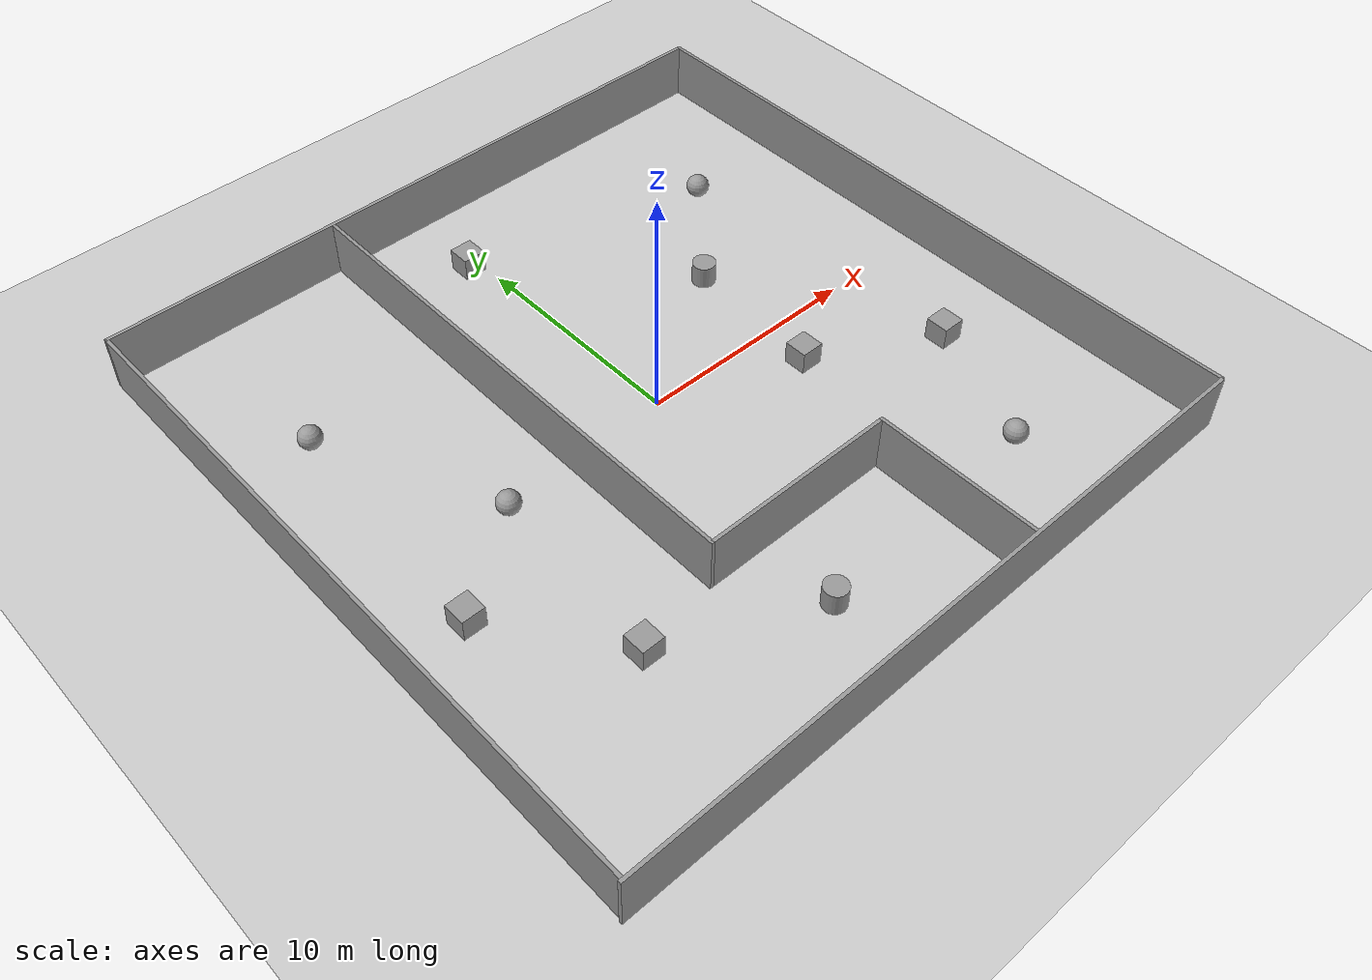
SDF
<sdf version="1.6">
 <world name="default">
  <light name="sun" type="directional">
   <pose>0 0 10 0 -0 0</pose>
   <diffuse>0.8 0.8 0.8 1</diffuse>
   <specular>0.2 0.2 0.2 1</specular>
   <attenuation>
    <range>1000</range>
    <constant>0.9</constant>
    <linear>0.01</linear>
    <quadratic>0.001</quadratic>
   </attenuation>
   <direction>-0.5 0.1 -0.9</direction>
  </light>
  <model name="ground_plane">
   <static>1</static>
   <link name="link">
    <collision name="collision">
     <geometry><plane><normal>0 0 1</normal><size>100 100</size></plane></geometry>
     <surface>
      <contact><collide_bitmask>65535</collide_bitmask></contact>
      <friction><ode><mu>100</mu><mu2>50</mu2></ode></friction>
     </surface>
    </collision>
    <visual name="visual">
     <cast_shadows>0</cast_shadows>
     <geometry><plane><normal>0 0 1</normal><size>100 100</size></plane></geometry>
     <material>
      <script><uri>file://media/materials/scripts/gazebo.material</uri><name>Gazebo/Grey</name></script>
     </material>
    </visual>
   </link>
  </model>
  <gravity>0 0 -9.8</gravity>
  <magnetic_field>6e-06 2.3e-05 -4.2e-05</magnetic_field>
  <atmosphere type="adiabatic"/>
  <physics name="default_physics" default="0" type="ode">
   <max_step_size>0.001</max_step_size>
   <real_time_factor>1</real_time_factor>
   <real_time_update_rate>1000</real_time_update_rate>
  </physics>
  <scene><ambient>0.4 0.4 0.4 1</ambient><background>0.7 0.7 0.7 1</background><shadows>1</shadows></scene>
  <spherical_coordinates>
   <surface_model>EARTH_WGS84</surface_model>
   <latitude_deg>0</latitude_deg>
   <longitude_deg>0</longitude_deg>
   <elevation>0</elevation>
   <heading_deg>0</heading_deg>
  </spherical_coordinates>
  <model name="multi_test.world">
   <pose>-0.035378 -0.035378 0 0 -0 0</pose>
   <link name="Wall_15">
    <collision name="Wall_15_Collision">
     <geometry><box><size>30.15 0.15 2.5</size></box></geometry>
     <pose>0 0 1.25 0 -0 0</pose>
    </collision>
    <visual name="Wall_15_Visual">
     <pose>0 0 1.25 0 -0 0</pose>
     <geometry><box><size>30.15 0.15 2.5</size></box></geometry>
     <material>
      <script><uri>file://media/materials/scripts/gazebo.material</uri><name>Gazebo/Grey</name></script>
      <ambient>1 1 1 1</ambient>
     </material>
     <meta><layer>0</layer></meta>
    </visual>
    <pose>-14.9646 0.035378 0 0 -0 -1.5708</pose>
   </link>
   <link name="Wall_17">
    <collision name="Wall_17_Collision">
     <geometry><box><size>30.15 0.15 2.5</size></box></geometry>
     <pose>0 0 1.25 0 -0 0</pose>
    </collision>
    <visual name="Wall_17_Visual">
     <pose>0 0 1.25 0 -0 0</pose>
     <geometry><box><size>30.15 0.15 2.5</size></box></geometry>
     <material>
      <script><uri>file://media/materials/scripts/gazebo.material</uri><name>Gazebo/Grey</name></script>
      <ambient>1 1 1 1</ambient>
     </material>
     <meta><layer>0</layer></meta>
    </visual>
    <pose>15.0354 0.035378 0 0 -0 -1.5708</pose>
   </link>
   <link name="Wall_19">
    <collision name="Wall_19_Collision">
     <geometry><box><size>30.15 0.15 2.5</size></box></geometry>
     <pose>0 0 1.25 0 -0 0</pose>
    </collision>
    <visual name="Wall_19_Visual">
     <pose>0 0 1.25 0 -0 0</pose>
     <geometry><box><size>30.15 0.15 2.5</size></box></geometry>
     <material>
      <script><uri>file://media/materials/scripts/gazebo.material</uri><name>Gazebo/Grey</name></script>
      <ambient>1 1 1 1</ambient>
     </material>
     <meta><layer>0</layer></meta>
    </visual>
    <pose>-0.03538 -15.0354 0 0 -0 0</pose>
   </link>
   <link name="Wall_21">
    <collision name="Wall_21_Collision">
     <geometry><box><size>30.15 0.15 2.5</size></box></geometry>
     <pose>0 0 1.25 0 -0 0</pose>
    </collision>
    <visual name="Wall_21_Visual">
     <pose>0 0 1.25 0 -0 0</pose>
     <geometry><box><size>30.15 0.15 2.5</size></box></geometry>
     <material>
      <script><uri>file://media/materials/scripts/gazebo.material</uri><name>Gazebo/Grey</name></script>
      <ambient>1 1 1 1</ambient>
     </material>
     <meta><layer>0</layer></meta>
    </visual>
    <pose>0.035378 15.0354 0 0 -0 0</pose>
   </link>
   <link name="Wall_23">
    <collision name="Wall_23_Collision">
     <geometry><box><size>23 0.15 2.5</size></box></geometry>
     <pose>0 0 1.25 0 -0 0</pose>
    </collision>
    <visual name="Wall_23_Visual">
     <pose>0 0 1.25 0 -0 0</pose>
     <geometry><box><size>23 0.15 2.5</size></box></geometry>
     <material>
      <script><uri>file://media/materials/scripts/gazebo.material</uri><name>Gazebo/Grey</name></script>
      <ambient>1 1 1 1</ambient>
     </material>
     <meta><layer>0</layer></meta>
    </visual>
    <pose>-4.58957 3.59241 0 0 -0 -1.5708</pose>
   </link>
   <link name="Wall_25">
    <collision name="Wall_25_Collision">
     <geometry><box><size>8.75 0.15 2.5</size></box></geometry>
     <pose>0 0 1.25 0 -0 0</pose>
    </collision>
    <visual name="Wall_25_Visual">
     <pose>0 0 1.25 0 -0 0</pose>
     <geometry><box><size>8.75 0.15 2.5</size></box></geometry>
     <material>
      <script><uri>file://media/materials/scripts/gazebo.material</uri><name>Gazebo/Grey</name></script>
      <ambient>1 1 1 1</ambient>
     </material>
     <meta><layer>0</layer></meta>
    </visual>
    <pose>-0.289572 -7.83259 0 0 -0 0</pose>
   </link>
   <link name="Wall_26">
    <collision name="Wall_26_Collision">
     <geometry><box><size>7.25 0.15 2.5</size></box></geometry>
     <pose>0 0 1.25 0 -0 0</pose>
    </collision>
    <visual name="Wall_26_Visual">
     <pose>0 0 1.25 0 -0 0</pose>
     <geometry><box><size>7.25 0.15 2.5</size></box></geometry>
     <material>
      <script><uri>file://media/materials/scripts/gazebo.material</uri><name>Gazebo/Grey</name></script>
      <ambient>1 1 1 1</ambient>
     </material>
     <meta><layer>0</layer></meta>
    </visual>
    <pose>4.01043 -11.3826 0 0 -0 -1.5708</pose>
   </link>
   <static>1</static>
  </model>
  <model name="unit_sphere">
   <pose>-11.2524 7.18842 0.5 0 -0 0</pose>
   <link name="link">
    <inertial>
     <mass>1</mass>
     <inertia><ixx>0.1</ixx><ixy>0</ixy><ixz>0</ixz><iyy>0.1</iyy><iyz>0</iyz><izz>0.1</izz></inertia>
    </inertial>
    <collision name="collision"><geometry><sphere><radius>0.5</radius></sphere></geometry></collision>
    <visual name="visual">
     <geometry><sphere><radius>0.5</radius></sphere></geometry>
     <material>
      <script><name>Gazebo/Grey</name><uri>file://media/materials/scripts/gazebo.material</uri></script>
     </material>
    </visual>
   </link>
  </model>
  <model name="unit_sphere_0">
   <pose>-7.6898 -0.409196 0.5 0 -0 0</pose>
   <link name="link">
    <inertial>
     <mass>1</mass>
     <inertia><ixx>0.1</ixx><ixy>0</ixy><ixz>0</ixz><iyy>0.1</iyy><iyz>0</iyz><izz>0.1</izz></inertia>
    </inertial>
    <collision name="collision"><geometry><sphere><radius>0.5</radius></sphere></geometry></collision>
    <visual name="visual">
     <geometry><sphere><radius>0.5</radius></sphere></geometry>
     <material>
      <script><name>Gazebo/Grey</name><uri>file://media/materials/scripts/gazebo.material</uri></script>
     </material>
    </visual>
   </link>
  </model>
  <model name="unit_box">
   <pose>-11.918 -3.4058 0.499995 0 1e-05 0</pose>
   <link name="link">
    <inertial>
     <mass>1</mass>
     <inertia>
      <ixx>0.166667</ixx>
      <ixy>0</ixy>
      <ixz>0</ixz>
      <iyy>0.166667</iyy>
      <iyz>0</iyz>
      <izz>0.166667</izz>
     </inertia>
    </inertial>
    <collision name="collision"><geometry><box><size>1 1 1</size></box></geometry></collision>
    <visual name="visual">
     <geometry><box><size>1 1 1</size></box></geometry>
     <material>
      <script><name>Gazebo/Grey</name><uri>file://media/materials/scripts/gazebo.material</uri></script>
     </material>
    </visual>
   </link>
  </model>
  <model name="unit_box_0">
   <pose>-8.22623 -8.4084 0.499995 -1e-05 -0 -0</pose>
   <link name="link">
    <inertial>
     <mass>1</mass>
     <inertia>
      <ixx>0.166667</ixx>
      <ixy>0</ixy>
      <ixz>0</ixz>
      <iyy>0.166667</iyy>
      <iyz>0</iyz>
      <izz>0.166667</izz>
     </inertia>
    </inertial>
    <collision name="collision"><geometry><box><size>1 1 1</size></box></geometry></collision>
    <visual name="visual">
     <geometry><box><size>1 1 1</size></box></geometry>
     <material>
      <script><name>Gazebo/Grey</name><uri>file://media/materials/scripts/gazebo.material</uri></script>
     </material>
    </visual>
   </link>
  </model>
  <model name="unit_cylinder">
   <pose>-1.93298 -11.2806 0.499992 -3e-06 4e-06 0</pose>
   <link name="link">
    <inertial>
     <mass>1</mass>
     <inertia><ixx>0.145833</ixx><ixy>0</ixy><ixz>0</ixz><iyy>0.145833</iyy><iyz>0</iyz><izz>0.125</izz></inertia>
    </inertial>
    <collision name="collision">
     <geometry><cylinder><radius>0.5</radius><length>1</length></cylinder></geometry>
    </collision>
    <visual name="visual">
     <geometry><cylinder><radius>0.5</radius><length>1</length></cylinder></geometry>
     <material>
      <script><name>Gazebo/Grey</name><uri>file://media/materials/scripts/gazebo.material</uri></script>
     </material>
    </visual>
   </link>
  </model>
  <model name="unit_cylinder_0">
   <pose>6.38127 4.10556 0.499998 3e-06 -4e-06 0</pose>
   <link name="link">
    <inertial>
     <mass>1</mass>
     <inertia><ixx>0.145833</ixx><ixy>0</ixy><ixz>0</ixz><iyy>0.145833</iyy><iyz>0</iyz><izz>0.125</izz></inertia>
    </inertial>
    <collision name="collision">
     <geometry><cylinder><radius>0.5</radius><length>1</length></cylinder></geometry>
    </collision>
    <visual name="visual">
     <geometry><cylinder><radius>0.5</radius><length>1</length></cylinder></geometry>
     <material>
      <script><name>Gazebo/Grey</name><uri>file://media/materials/scripts/gazebo.material</uri></script>
     </material>
    </visual>
   </link>
  </model>
  <model name="unit_box_1">
   <pose>11.1682 -4.99891 0.499995 0 1e-05 0</pose>
   <link name="link">
    <inertial>
     <mass>1</mass>
     <inertia>
      <ixx>0.166667</ixx>
      <ixy>0</ixy>
      <ixz>0</ixz>
      <iyy>0.166667</iyy>
      <iyz>0</iyz>
      <izz>0.166667</izz>
     </inertia>
    </inertial>
    <collision name="collision"><geometry><box><size>1 1 1</size></box></geometry></collision>
    <visual name="visual">
     <geometry><box><size>1 1 1</size></box></geometry>
     <material>
      <script><name>Gazebo/Grey</name><uri>file://media/materials/scripts/gazebo.material</uri></script>
     </material>
    </visual>
   </link>
  </model>
  <model name="unit_box_2">
   <pose>-0.539677 11.3606 0.499995 -1e-05 -0 -0</pose>
   <link name="link">
    <inertial>
     <mass>1</mass>
     <inertia>
      <ixx>0.166667</ixx>
      <ixy>0</ixy>
      <ixz>0</ixz>
      <iyy>0.166667</iyy>
      <iyz>0</iyz>
      <izz>0.166667</izz>
     </inertia>
    </inertial>
    <collision name="collision"><geometry><box><size>1 1 1</size></box></geometry></collision>
    <visual name="visual">
     <geometry><box><size>1 1 1</size></box></geometry>
     <material>
      <script><name>Gazebo/Grey</name><uri>file://media/materials/scripts/gazebo.material</uri></script>
     </material>
    </visual>
   </link>
  </model>
  <model name="unit_sphere_1">
   <pose>10.187 8.52971 0.5 0 -0 0</pose>
   <link name="link">
    <inertial>
     <mass>1</mass>
     <inertia><ixx>0.1</ixx><ixy>0</ixy><ixz>0</ixz><iyy>0.1</iyy><iyz>0</iyz><izz>0.1</izz></inertia>
    </inertial>
    <collision name="collision"><geometry><sphere><radius>0.5</radius></sphere></geometry></collision>
    <visual name="visual">
     <geometry><sphere><radius>0.5</radius></sphere></geometry>
     <material>
      <script><name>Gazebo/Grey</name><uri>file://media/materials/scripts/gazebo.material</uri></script>
     </material>
    </visual>
   </link>
  </model>
  <model name="unit_box_3">
   <pose>5.93643 -2.15125 0.499995 -1e-05 -0 0</pose>
   <link name="link">
    <inertial>
     <mass>1</mass>
     <inertia>
      <ixx>0.166667</ixx>
      <ixy>0</ixy>
      <ixz>0</ixz>
      <iyy>0.166667</iyy>
      <iyz>0</iyz>
      <izz>0.166667</izz>
     </inertia>
    </inertial>
    <collision name="collision"><geometry><box><size>1 1 1</size></box></geometry></collision>
    <visual name="visual">
     <geometry><box><size>1 1 1</size></box></geometry>
     <material>
      <script><name>Gazebo/Grey</name><uri>file://media/materials/scripts/gazebo.material</uri></script>
     </material>
    </visual>
   </link>
  </model>
  <model name="unit_sphere_2">
   <pose>8.82594 -10.5852 0.5 0 -0 0</pose>
   <link name="link">
    <inertial>
     <mass>1</mass>
     <inertia><ixx>0.1</ixx><ixy>0</ixy><ixz>0</ixz><iyy>0.1</iyy><iyz>0</iyz><izz>0.1</izz></inertia>
    </inertial>
    <collision name="collision"><geometry><sphere><radius>0.5</radius></sphere></geometry></collision>
    <visual name="visual">
     <geometry><sphere><radius>0.5</radius></sphere></geometry>
     <material>
      <script><name>Gazebo/Grey</name><uri>file://media/materials/scripts/gazebo.material</uri></script>
     </material>
    </visual>
   </link>
  </model>
 </world>
</sdf>
